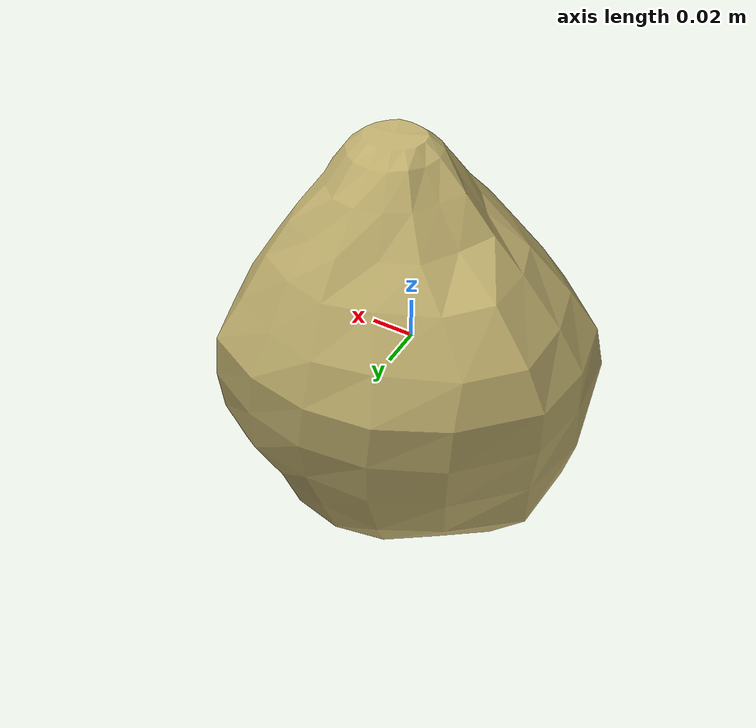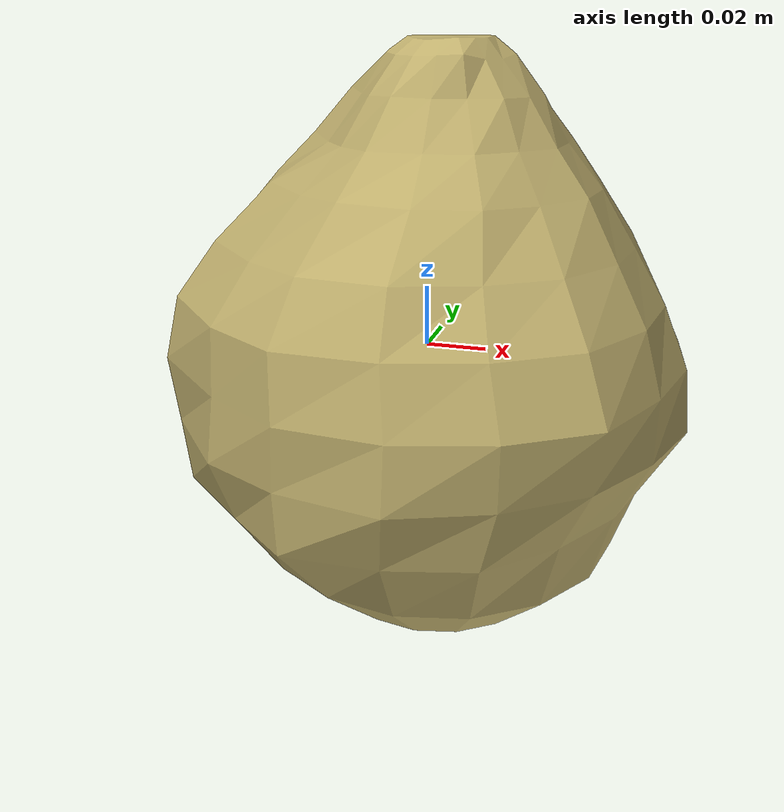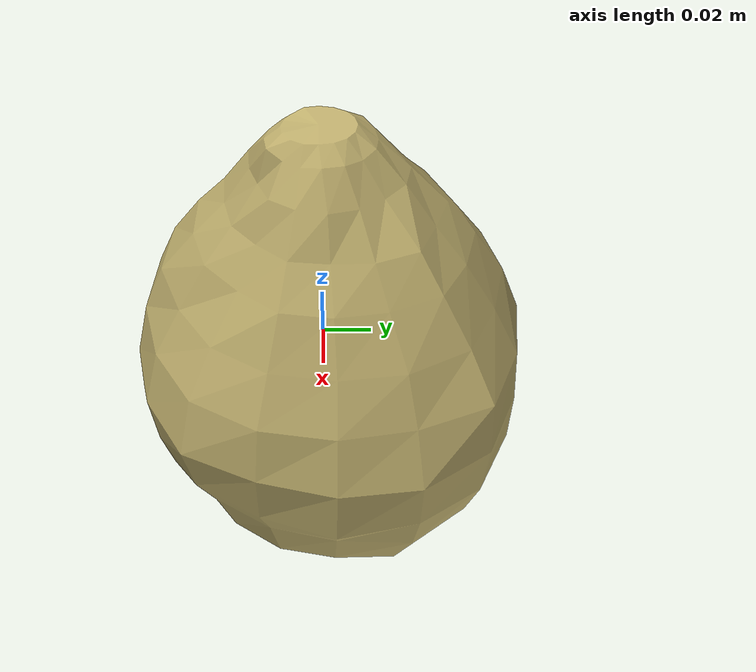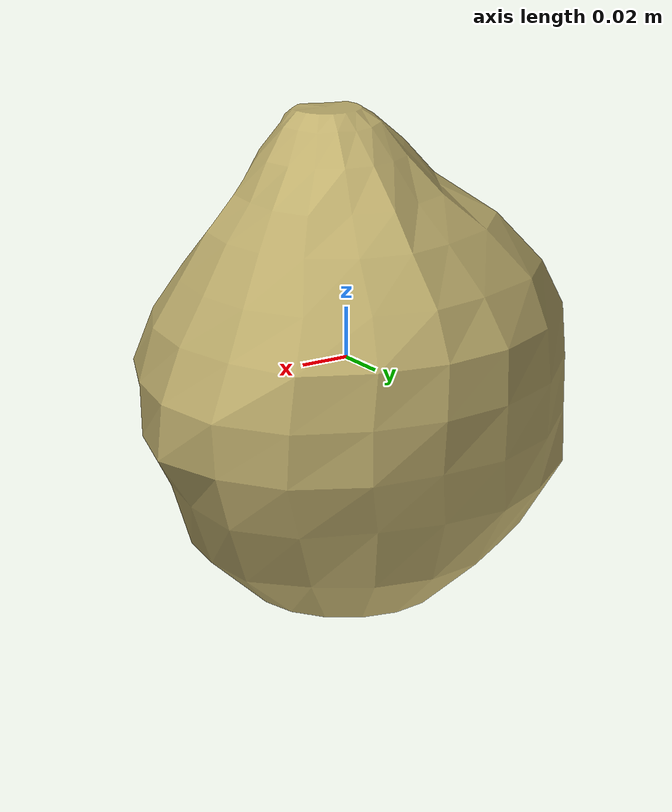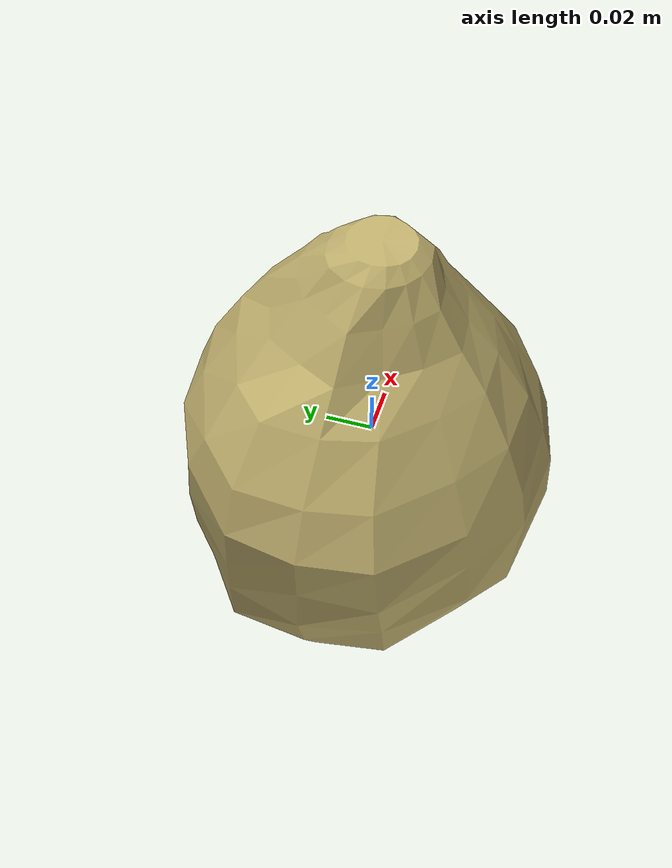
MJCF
<mujoco model="Lettuce_21">
  <compiler autolimits="true" boundmass="0.01" angle="radian"/>
  <default>
    <default class="/">
      <default class="__VISUAL_MJT__">
        <geom contype="0" conaffinity="0" group="0"/>
      </default>
      <default class="__STRUCTURAL_MJT__">
        <geom contype="8" conaffinity="15" group="4" friction="0.90000000000000002 0.90000000000000002 0.001" solref="0.025000000000000001 1" solimp="0.998 0.998 0.001"/>
      </default>
      <default class="__DYNAMIC_MJT__">
        <geom contype="1" conaffinity="15" group="4" friction="0.90000000000000002 0.90000000000000002 0.001" solref="0.025000000000000001 1" solimp="0.998 0.998 0.001"/>
      </default>
    </default>
  </default>
  <asset>
    <texture name="Lettuce3_Mat" type="2d" file="Lettuce3_AlbedoTransparency.png"/>
    <material name="material_Lettuce3_Mat" class="/" texture="Lettuce3_Mat" specular="0.5" shininess="0.5" rgba="1 0.95246359999999997 0.62735850000000004 1"/>
    <mesh name="Lettuce_21_lettuce_c1" class="/" file="Lettuce_21_lettuce_c1/Lettuce_21_lettuce_c1.obj" scale="1 1 1"/>
  </asset>
  <worldbody>
    <body name="Lettuce_21">
      <joint name="Lettuce_21_free" class="/" type="free" pos="0 0 0" axis="0 0 1" stiffness="0" range="0 0" armature="0" damping="0.10000000000000001" frictionloss="0"/>
      <body name="Lettuce_21_lettuce_c1" pos="0.00072999999999999996 0.0014300000000000001 -0.0016000000000000001" quat="1 0 0 0">
        <geom name="Lettuce_21_lettuce_c1" class="__VISUAL_MJT__" type="mesh" material="material_Lettuce3_Mat" shellinertia="true" mesh="Lettuce_21_lettuce_c1"/>
        <geom name="Lettuce_21_PrimitiveCollider_0" class="__DYNAMIC_MJT__" type="capsule" size="0.085788965225219727 0.0050963759422302246" rgba="0 1 0 1" pos="0.0007330775260925293 -0.0014282986521720886 -0.010226674377918243" quat="0.99999999999891198 1.4751396607739272e-06 0 0"/>
        <geom name="Lettuce_21_PrimitiveCollider_1" class="__DYNAMIC_MJT__" type="capsule" size="0.038795359432697296 0.0082770660519599915" rgba="0 1 0 1" pos="0.0056621665135025978 -0.0012893350794911385 0.057247385382652283" quat="0.99999999999891198 1.4751396607739272e-06 0 0"/>
      </body>
    </body>
  </worldbody>
</mujoco>
